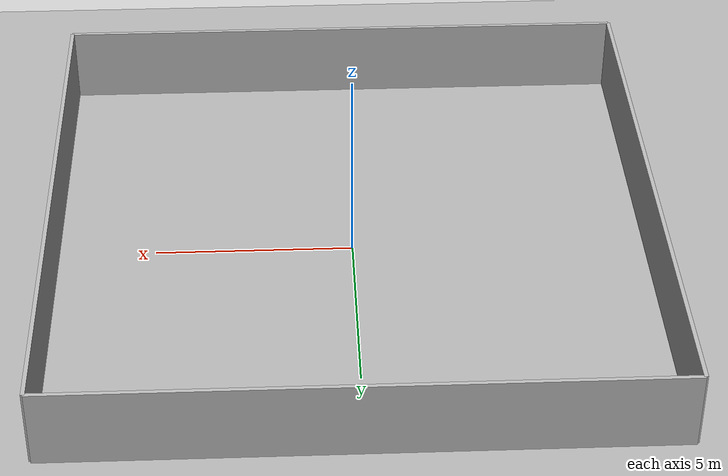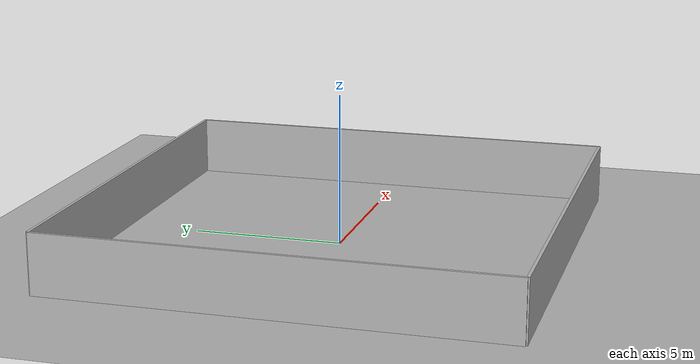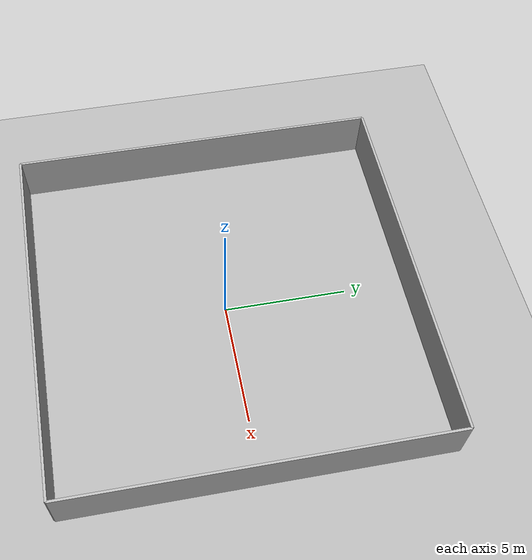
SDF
<sdf version="1.9">
 <world name="human_test_world">
  <physics name="1ms" type="ignored">
   <max_step_size>0.001</max_step_size>
   <real_time_factor>1.0</real_time_factor>
  </physics>
  <plugin filename="gz-sim-physics-system" name="gz::sim::systems::Physics"/>
  <plugin filename="gz-sim-user-commands-system" name="gz::sim::systems::UserCommands"/>
  <plugin filename="gz-sim-scene-broadcaster-system" name="gz::sim::systems::SceneBroadcaster"/>
  <plugin filename="gz-sim-imu-system" name="gz::sim::systems::Imu"/>
  <plugin filename="gz-sim-sensors-system" name="gz::sim::systems::Sensors">
   <render_engine>ogre2</render_engine>
  </plugin>
  <light type="directional" name="sun">
   <pose>0 0 10 0 0 0</pose>
   <diffuse>0.8 0.8 0.8 1</diffuse>
   <specular>0.2 0.2 0.2 1</specular>
   <direction>-0.5 0.1 -0.9</direction>
  </light>
  <model name="ground_plane">
   <static>true</static>
   <link name="link">
    <collision name="collision">
     <geometry><plane><normal>0 0 1</normal><size>15 15</size></plane></geometry>
    </collision>
    <visual name="visual">
     <geometry><plane><normal>0 0 1</normal><size>15 15</size></plane></geometry>
     <material><ambient>0.7 0.7 0.7 1</ambient><diffuse>0.7 0.7 0.7 1</diffuse></material>
    </visual>
   </link>
  </model>
  <model name="wall_north">
   <static>true</static>
   <pose>0 7.5 1 0 0 0</pose>
   <link name="link">
    <collision name="collision"><geometry><box><size>15 0.1 2</size></box></geometry></collision>
    <visual name="visual"><geometry><box><size>15 0.1 2</size></box></geometry></visual>
   </link>
  </model>
  <model name="wall_south">
   <static>true</static>
   <pose>0 -7.5 1 0 0 0</pose>
   <link name="link">
    <collision name="collision"><geometry><box><size>15 0.1 2</size></box></geometry></collision>
    <visual name="visual"><geometry><box><size>15 0.1 2</size></box></geometry></visual>
   </link>
  </model>
  <model name="wall_east">
   <static>true</static>
   <pose>7.5 0 1 0 0 0</pose>
   <link name="link">
    <collision name="collision"><geometry><box><size>0.1 15 2</size></box></geometry></collision>
    <visual name="visual"><geometry><box><size>0.1 15 2</size></box></geometry></visual>
   </link>
  </model>
  <model name="wall_west">
   <static>true</static>
   <pose>-7.5 0 1 0 0 0</pose>
   <link name="link">
    <collision name="collision"><geometry><box><size>0.1 15 2</size></box></geometry></collision>
    <visual name="visual"><geometry><box><size>0.1 15 2</size></box></geometry></visual>
   </link>
  </model>
 </world>
</sdf>
